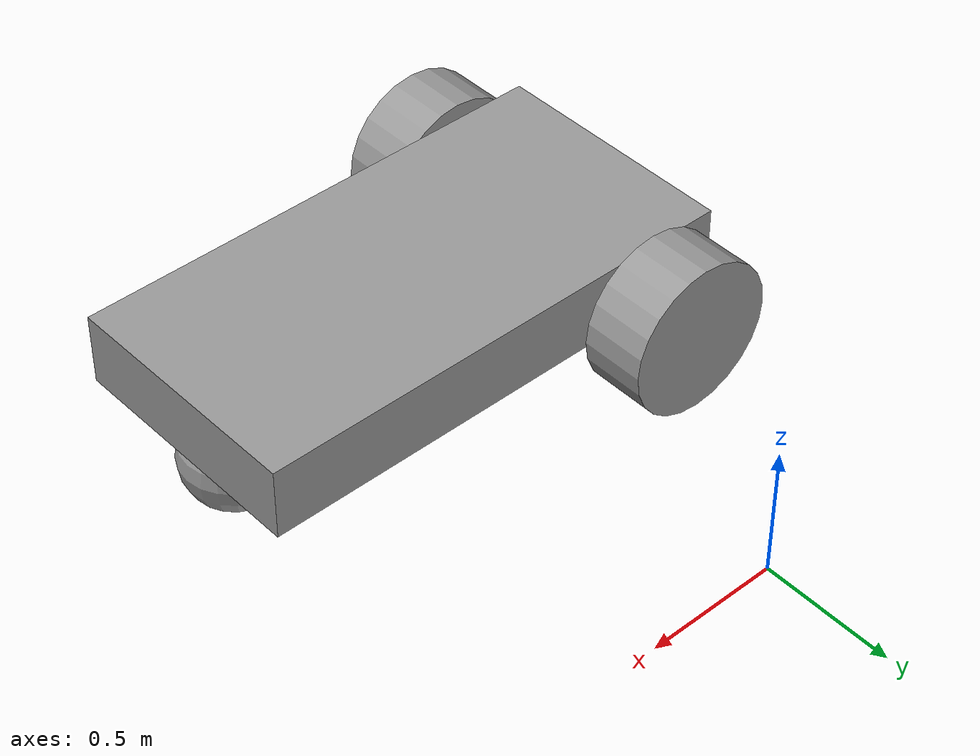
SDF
<?xml version='1.0'?>
<sdf version='1.6'>
  <model name='model'>
    <link name='link_0'>
      <pose frame=''>0.178087 -1.52563 0.267494 0 -0 0</pose>
      <inertial>
        <mass>0.51884</mass>
        <inertia>
          <ixx>0.0443989</ixx>
          <ixy>0</ixy>
          <ixz>0</ixz>
          <iyy>0.161858</iyy>
          <iyz>0</iyz>
          <izz>0.199574</izz>
        </inertia>
        <pose frame=''>0 0 0 0 -0 0</pose>
      </inertial>
      <gravity>1</gravity>
      <self_collide>0</self_collide>
      <kinematic>0</kinematic>
      <visual name='visual'>
        <pose frame=''>0 0 0 0 -0 0</pose>
        <geometry>
          <box>
            <size>1.91475 0.97447 0.278011</size>
          </box>
        </geometry>
        <material>
          <lighting>1</lighting>
          <script>
            <uri>file://media/materials/scripts/gazebo.material</uri>
            <name>Gazebo/Grey</name>
          </script>
          <shader type='pixel'>
            <normal_map>__default__</normal_map>
          </shader>
          <ambient>0.3 0.3 0.3 1</ambient>
          <diffuse>0.7 0.7 0.7 1</diffuse>
          <specular>0.01 0.01 0.01 1</specular>
          <emissive>0 0 0 1</emissive>
        </material>
        <transparency>0</transparency>
        <cast_shadows>1</cast_shadows>
      </visual>
      <collision name='collision'>
        <laser_retro>0</laser_retro>
        <max_contacts>10</max_contacts>
        <pose frame=''>0 0 0 0 -0 0</pose>
        <geometry>
          <box>
            <size>1.91475 0.97447 0.278011</size>
          </box>
        </geometry>
        <surface>
          <friction>
            <ode>
              <mu>1</mu>
              <mu2>1</mu2>
              <fdir1>0 0 0</fdir1>
              <slip1>0</slip1>
              <slip2>0</slip2>
            </ode>
            <torsional>
              <coefficient>1</coefficient>
              <patch_radius>0</patch_radius>
              <surface_radius>0</surface_radius>
              <use_patch_radius>1</use_patch_radius>
              <ode>
                <slip>0</slip>
              </ode>
            </torsional>
          </friction>
          <bounce>
            <restitution_coefficient>0</restitution_coefficient>
            <threshold>1e+06</threshold>
          </bounce>
          <contact>
            <collide_without_contact>0</collide_without_contact>
            <collide_without_contact_bitmask>1</collide_without_contact_bitmask>
            <collide_bitmask>1</collide_bitmask>
            <ode>
              <soft_cfm>0</soft_cfm>
              <soft_erp>0.2</soft_erp>
              <kp>1e+13</kp>
              <kd>1</kd>
              <max_vel>0.01</max_vel>
              <min_depth>0</min_depth>
            </ode>
            <bullet>
              <split_impulse>1</split_impulse>
              <split_impulse_penetration_threshold>-0.01</split_impulse_penetration_threshold>
              <soft_cfm>0</soft_cfm>
              <soft_erp>0.2</soft_erp>
              <kp>1e+13</kp>
              <kd>1</kd>
            </bullet>
          </contact>
        </surface>
      </collision>
    </link>
    <link name='link_1'>
      <pose frame=''>-0.479288 -0.898366 0.167494 1.5707 -0 0</pose>
      <inertial>
        <mass>1</mass>
        <inertia>
          <ixx>0.145833</ixx>
          <ixy>0</ixy>
          <ixz>0</ixz>
          <iyy>0.145833</iyy>
          <iyz>0</iyz>
          <izz>0.125</izz>
        </inertia>
        <pose frame=''>0 0 0 0 -0 0</pose>
      </inertial>
      <gravity>1</gravity>
      <self_collide>0</self_collide>
      <kinematic>0</kinematic>
      <visual name='visual'>
        <pose frame=''>0 0 0 0 -0 0</pose>
        <geometry>
          <cylinder>
            <radius>0.3</radius>
            <length>0.25</length>
          </cylinder>
        </geometry>
        <material>
          <lighting>1</lighting>
          <script>
            <uri>file://media/materials/scripts/gazebo.material</uri>
            <name>Gazebo/Grey</name>
          </script>
          <shader type='pixel'>
            <normal_map>__default__</normal_map>
          </shader>
          <ambient>0.3 0.3 0.3 1</ambient>
          <diffuse>0.7 0.7 0.7 1</diffuse>
          <specular>0.01 0.01 0.01 1</specular>
          <emissive>0 0 0 1</emissive>
        </material>
        <transparency>0</transparency>
        <cast_shadows>1</cast_shadows>
      </visual>
      <collision name='collision'>
        <laser_retro>0</laser_retro>
        <max_contacts>10</max_contacts>
        <pose frame=''>0 0 0 0 -0 0</pose>
        <geometry>
          <cylinder>
            <radius>0.3</radius>
            <length>0.25</length>
          </cylinder>
        </geometry>
        <surface>
          <friction>
            <ode>
              <mu>1</mu>
              <mu2>1</mu2>
              <fdir1>0 0 0</fdir1>
              <slip1>0</slip1>
              <slip2>0</slip2>
            </ode>
            <torsional>
              <coefficient>1</coefficient>
              <patch_radius>0</patch_radius>
              <surface_radius>0</surface_radius>
              <use_patch_radius>1</use_patch_radius>
              <ode>
                <slip>0</slip>
              </ode>
            </torsional>
          </friction>
          <bounce>
            <restitution_coefficient>0</restitution_coefficient>
            <threshold>1e+06</threshold>
          </bounce>
          <contact>
            <collide_without_contact>0</collide_without_contact>
            <collide_without_contact_bitmask>1</collide_without_contact_bitmask>
            <collide_bitmask>1</collide_bitmask>
            <ode>
              <soft_cfm>0</soft_cfm>
              <soft_erp>0.2</soft_erp>
              <kp>1e+13</kp>
              <kd>1</kd>
              <max_vel>0.01</max_vel>
              <min_depth>0</min_depth>
            </ode>
            <bullet>
              <split_impulse>1</split_impulse>
              <split_impulse_penetration_threshold>-0.01</split_impulse_penetration_threshold>
              <soft_cfm>0</soft_cfm>
              <soft_erp>0.2</soft_erp>
              <kp>1e+13</kp>
              <kd>1</kd>
            </bullet>
          </contact>
        </surface>
      </collision>
    </link>
    <link name='link_1_clone'>
      <pose frame=''>-0.479288 -2.13789 0.167494 1.5707 -0 0</pose>
      <inertial>
        <mass>1</mass>
        <inertia>
          <ixx>0.145833</ixx>
          <ixy>0</ixy>
          <ixz>0</ixz>
          <iyy>0.145833</iyy>
          <iyz>0</iyz>
          <izz>0.125</izz>
        </inertia>
        <pose frame=''>0 0 0 0 -0 0</pose>
      </inertial>
      <self_collide>0</self_collide>
      <kinematic>0</kinematic>
      <gravity>1</gravity>
      <visual name='visual'>
        <pose frame=''>0 0 0 0 -0 0</pose>
        <geometry>
          <cylinder>
            <radius>0.3</radius>
            <length>0.25</length>
          </cylinder>
        </geometry>
        <material>
          <lighting>1</lighting>
          <script>
            <uri>file://media/materials/scripts/gazebo.material</uri>
            <name>Gazebo/Grey</name>
          </script>
          <shader type='pixel'>
            <normal_map>__default__</normal_map>
          </shader>
          <ambient>0.3 0.3 0.3 1</ambient>
          <diffuse>0.7 0.7 0.7 1</diffuse>
          <specular>0.01 0.01 0.01 1</specular>
          <emissive>0 0 0 1</emissive>
        </material>
        <transparency>0</transparency>
        <cast_shadows>1</cast_shadows>
      </visual>
      <collision name='collision'>
        <laser_retro>0</laser_retro>
        <max_contacts>10</max_contacts>
        <pose frame=''>0 0 0 0 -0 0</pose>
        <geometry>
          <cylinder>
            <radius>0.3</radius>
            <length>0.25</length>
          </cylinder>
        </geometry>
        <surface>
          <friction>
            <ode>
              <mu>1</mu>
              <mu2>1</mu2>
              <fdir1>0 0 0</fdir1>
              <slip1>0</slip1>
              <slip2>0</slip2>
            </ode>
            <torsional>
              <coefficient>1</coefficient>
              <patch_radius>0</patch_radius>
              <surface_radius>0</surface_radius>
              <use_patch_radius>1</use_patch_radius>
              <ode>
                <slip>0</slip>
              </ode>
            </torsional>
          </friction>
          <bounce>
            <restitution_coefficient>0</restitution_coefficient>
            <threshold>1e+06</threshold>
          </bounce>
          <contact>
            <collide_without_contact>0</collide_without_contact>
            <collide_without_contact_bitmask>1</collide_without_contact_bitmask>
            <collide_bitmask>1</collide_bitmask>
            <ode>
              <soft_cfm>0</soft_cfm>
              <soft_erp>0.2</soft_erp>
              <kp>1e+13</kp>
              <kd>1</kd>
              <max_vel>0.01</max_vel>
              <min_depth>0</min_depth>
            </ode>
            <bullet>
              <split_impulse>1</split_impulse>
              <split_impulse_penetration_threshold>-0.01</split_impulse_penetration_threshold>
              <soft_cfm>0</soft_cfm>
              <soft_erp>0.2</soft_erp>
              <kp>1e+13</kp>
              <kd>1</kd>
            </bullet>
          </contact>
        </surface>
      </collision>
    </link>
    <link name='link_2'>
      <pose frame=''>0.935461 -1.52563 0.015594 0 -0 0</pose>
      <inertial>
        <mass>1</mass>
        <inertia>
          <ixx>0.1</ixx>
          <ixy>0</ixy>
          <ixz>0</ixz>
          <iyy>0.1</iyy>
          <iyz>0</iyz>
          <izz>0.1</izz>
        </inertia>
        <pose frame=''>0 0 0 0 -0 0</pose>
      </inertial>
      <gravity>1</gravity>
      <self_collide>0</self_collide>
      <kinematic>0</kinematic>
      <visual name='visual'>
        <pose frame=''>0 0 0 0 -0 0</pose>
        <geometry>
          <sphere>
            <radius>0.2</radius>
          </sphere>
        </geometry>
        <material>
          <lighting>1</lighting>
          <script>
            <uri>file://media/materials/scripts/gazebo.material</uri>
            <name>Gazebo/Grey</name>
          </script>
          <shader type='pixel'>
            <normal_map>__default__</normal_map>
          </shader>
          <ambient>0.3 0.3 0.3 1</ambient>
          <diffuse>0.7 0.7 0.7 1</diffuse>
          <specular>0.01 0.01 0.01 1</specular>
          <emissive>0 0 0 1</emissive>
        </material>
        <transparency>0</transparency>
        <cast_shadows>1</cast_shadows>
      </visual>
      <collision name='collision'>
        <laser_retro>0</laser_retro>
        <max_contacts>10</max_contacts>
        <pose frame=''>0 0 0 0 -0 0</pose>
        <geometry>
          <sphere>
            <radius>0.2</radius>
          </sphere>
        </geometry>
        <surface>
          <friction>
            <ode>
              <mu>1</mu>
              <mu2>1</mu2>
              <fdir1>0 0 0</fdir1>
              <slip1>0</slip1>
              <slip2>0</slip2>
            </ode>
            <torsional>
              <coefficient>1</coefficient>
              <patch_radius>0</patch_radius>
              <surface_radius>0</surface_radius>
              <use_patch_radius>1</use_patch_radius>
              <ode>
                <slip>0</slip>
              </ode>
            </torsional>
          </friction>
          <bounce>
            <restitution_coefficient>0</restitution_coefficient>
            <threshold>1e+06</threshold>
          </bounce>
          <contact>
            <collide_without_contact>0</collide_without_contact>
            <collide_without_contact_bitmask>1</collide_without_contact_bitmask>
            <collide_bitmask>1</collide_bitmask>
            <ode>
              <soft_cfm>0</soft_cfm>
              <soft_erp>0.2</soft_erp>
              <kp>1e+13</kp>
              <kd>1</kd>
              <max_vel>0.01</max_vel>
              <min_depth>0</min_depth>
            </ode>
            <bullet>
              <split_impulse>1</split_impulse>
              <split_impulse_penetration_threshold>-0.01</split_impulse_penetration_threshold>
              <soft_cfm>0</soft_cfm>
              <soft_erp>0.2</soft_erp>
              <kp>1e+13</kp>
              <kd>1</kd>
            </bullet>
          </contact>
        </surface>
      </collision>
    </link>
    <joint name='link_0_JOINT_0' type='revolute'>
      <parent>link_0</parent>
      <child>link_1</child>
      <pose frame=''>0 0 0 0 -0 0</pose>
      <axis>
        <xyz>0 0 1</xyz>
        <use_parent_model_frame>0</use_parent_model_frame>
        <limit>
          <lower>-1.79769e+308</lower>
          <upper>1.79769e+308</upper>
          <effort>-1</effort>
          <velocity>-1</velocity>
        </limit>
        <dynamics>
          <spring_reference>0</spring_reference>
          <spring_stiffness>0</spring_stiffness>
          <damping>0</damping>
        </dynamics>
      </axis>
      <physics>
        <ode>
          <limit>
            <cfm>0</cfm>
            <erp>0.2</erp>
          </limit>
          <suspension>
            <cfm>0</cfm>
            <erp>0.2</erp>
          </suspension>
        </ode>
      </physics>
    </joint>
    <joint name='link_0_JOINT_1' type='revolute'>
      <parent>link_0</parent>
      <child>link_1_clone</child>
      <pose frame=''>0 0 0 0 -0 0</pose>
      <axis>
        <xyz>0 0 1</xyz>
        <use_parent_model_frame>0</use_parent_model_frame>
        <limit>
          <lower>-1.79769e+308</lower>
          <upper>1.79769e+308</upper>
          <effort>-1</effort>
          <velocity>-1</velocity>
        </limit>
        <dynamics>
          <spring_reference>0</spring_reference>
          <spring_stiffness>0</spring_stiffness>
          <damping>0</damping>
        </dynamics>
      </axis>
      <physics>
        <ode>
          <limit>
            <cfm>0</cfm>
            <erp>0.2</erp>
          </limit>
          <suspension>
            <cfm>0</cfm>
            <erp>0.2</erp>
          </suspension>
        </ode>
      </physics>
    </joint>
    <joint name='link_0_JOINT_3' type='revolute'>
      <parent>link_0</parent>
      <child>link_1</child>
      <pose frame=''>0 0 0 0 -0 0</pose>
      <axis>
        <xyz>1 0 0</xyz>
        <use_parent_model_frame>0</use_parent_model_frame>
        <limit>
          <lower>-1.79769e+308</lower>
          <upper>1.79769e+308</upper>
          <effort>-1</effort>
          <velocity>-1</velocity>
        </limit>
        <dynamics>
          <spring_reference>0</spring_reference>
          <spring_stiffness>0</spring_stiffness>
          <damping>0</damping>
        </dynamics>
      </axis>
      <physics>
        <ode>
          <limit>
            <cfm>0</cfm>
            <erp>0.2</erp>
          </limit>
          <suspension>
            <cfm>0</cfm>
            <erp>0.2</erp>
          </suspension>
        </ode>
      </physics>
    </joint>
    <joint name='link_0_JOINT_4' type='revolute'>
      <parent>link_0</parent>
      <child>link_1_clone</child>
      <pose frame=''>0 0 0 0 -0 0</pose>
      <axis>
        <xyz>0 0 1</xyz>
        <use_parent_model_frame>0</use_parent_model_frame>
        <limit>
          <lower>-1.79769e+308</lower>
          <upper>1.79769e+308</upper>
          <effort>-1</effort>
          <velocity>-1</velocity>
        </limit>
        <dynamics>
          <spring_reference>0</spring_reference>
          <spring_stiffness>0</spring_stiffness>
          <damping>0</damping>
        </dynamics>
      </axis>
      <physics>
        <ode>
          <limit>
            <cfm>0</cfm>
            <erp>0.2</erp>
          </limit>
          <suspension>
            <cfm>0</cfm>
            <erp>0.2</erp>
          </suspension>
        </ode>
      </physics>
    </joint>
    <joint name='link_0_JOINT_5' type='revolute'>
      <parent>link_0</parent>
      <child>link_1</child>
      <pose frame=''>0 0 0 0 -0 0</pose>
      <axis>
        <xyz>0 0 1</xyz>
        <use_parent_model_frame>0</use_parent_model_frame>
        <limit>
          <lower>-1.79769e+308</lower>
          <upper>1.79769e+308</upper>
          <effort>-1</effort>
          <velocity>-1</velocity>
        </limit>
        <dynamics>
          <spring_reference>0</spring_reference>
          <spring_stiffness>0</spring_stiffness>
          <damping>0</damping>
        </dynamics>
      </axis>
      <physics>
        <ode>
          <limit>
            <cfm>0</cfm>
            <erp>0.2</erp>
          </limit>
          <suspension>
            <cfm>0</cfm>
            <erp>0.2</erp>
          </suspension>
        </ode>
      </physics>
    </joint>
    <joint name='link_0_JOINT_6' type='revolute'>
      <parent>link_0</parent>
      <child>link_1</child>
      <pose frame=''>0 0 0 0 -0 0</pose>
      <axis>
        <xyz>0 0 1</xyz>
        <use_parent_model_frame>0</use_parent_model_frame>
        <limit>
          <lower>-1.79769e+308</lower>
          <upper>1.79769e+308</upper>
          <effort>-1</effort>
          <velocity>-1</velocity>
        </limit>
        <dynamics>
          <spring_reference>0</spring_reference>
          <spring_stiffness>0</spring_stiffness>
          <damping>0</damping>
        </dynamics>
      </axis>
      <physics>
        <ode>
          <limit>
            <cfm>0</cfm>
            <erp>0.2</erp>
          </limit>
          <suspension>
            <cfm>0</cfm>
            <erp>0.2</erp>
          </suspension>
        </ode>
      </physics>
    </joint>
    <joint name='link_0_JOINT_7' type='revolute'>
      <parent>link_0</parent>
      <child>link_1_clone</child>
      <pose frame=''>0 0 0 0 -0 0</pose>
      <axis>
        <xyz>0 0 1</xyz>
        <use_parent_model_frame>0</use_parent_model_frame>
        <limit>
          <lower>-1.79769e+308</lower>
          <upper>1.79769e+308</upper>
          <effort>-1</effort>
          <velocity>-1</velocity>
        </limit>
        <dynamics>
          <spring_reference>0</spring_reference>
          <spring_stiffness>0</spring_stiffness>
          <damping>0</damping>
        </dynamics>
      </axis>
      <physics>
        <ode>
          <limit>
            <cfm>0</cfm>
            <erp>0.2</erp>
          </limit>
          <suspension>
            <cfm>0</cfm>
            <erp>0.2</erp>
          </suspension>
        </ode>
      </physics>
    </joint>
    <joint name='link_0_JOINT_8' type='ball'>
      <parent>link_0</parent>
      <child>link_2</child>
      <pose frame=''>0 0 0 0 -0 0</pose>
      <physics>
        <ode>
          <limit>
            <cfm>0</cfm>
            <erp>0.2</erp>
          </limit>
          <suspension>
            <cfm>0</cfm>
            <erp>0.2</erp>
          </suspension>
        </ode>
      </physics>
    </joint>
    <static>0</static>
    <allow_auto_disable>1</allow_auto_disable>
  </model>
</sdf>
